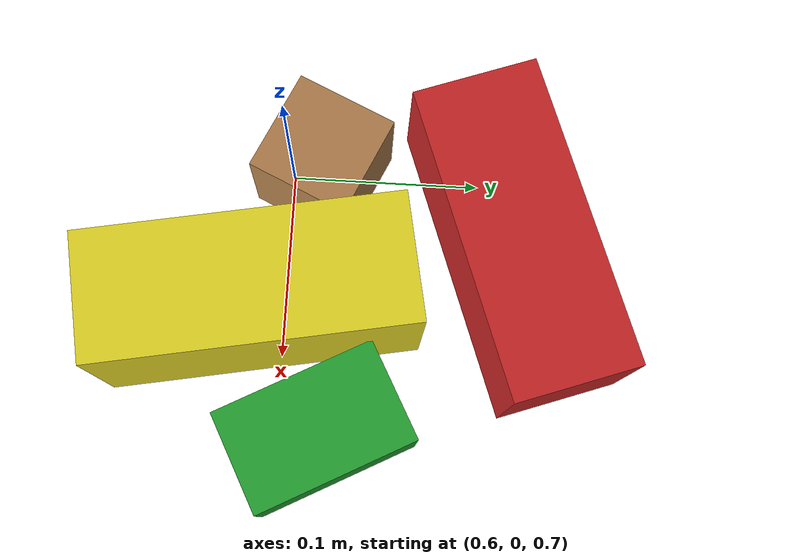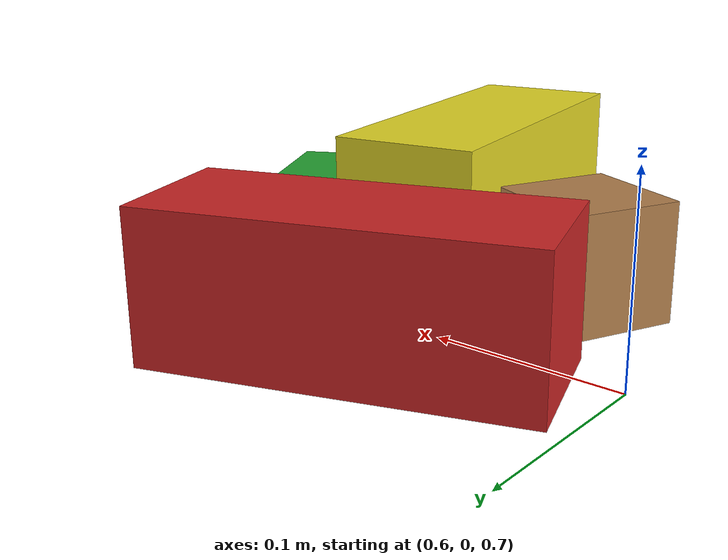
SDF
<sdf version="1.4">
 <world name="default">
  <light name="sun" type="directional">
   <pose>0 0 10 0 -0 0</pose>
   <diffuse>0.8 0.8 0.8 1</diffuse>
   <specular>0.2 0.2 0.2 1</specular>
   <attenuation>
    <range>1000</range>
    <constant>0.9</constant>
    <linear>0.01</linear>
    <quadratic>0.001</quadratic>
   </attenuation>
   <direction>-0.5 0.1 -0.9</direction>
  </light>
  <scene><shadows>0</shadows><ambient>0.4 0.4 0.4 1</ambient><background>0.7 0.7 0.7 1</background></scene>
  <model name="ground_plane">
   <static>1</static>
   <link name="link">
    <collision name="collision">
     <geometry><plane><normal>0 0 1</normal><size>100 100</size></plane></geometry>
     <surface><friction><ode><mu>100</mu><mu2>50</mu2></ode></friction></surface>
    </collision>
    <visual name="visual">
     <cast_shadows>0</cast_shadows>
     <geometry><plane><normal>0 0 1</normal><size>100 100</size></plane></geometry>
     <material>
      <script><uri>file://media/materials/scripts/gazebo.material</uri><name>Gazebo/Grey</name></script>
     </material>
    </visual>
    <velocity_decay><linear>0</linear><angular>0</angular></velocity_decay>
   </link>
  </model>
  <physics type="ode">
   <max_step_size>0.001</max_step_size>
   <real_time_factor>1</real_time_factor>
   <real_time_update_rate>1000</real_time_update_rate>
   <gravity>0 0 -9.8</gravity>
  </physics>
  <spherical_coordinates>
   <surface_model>EARTH_WGS84</surface_model>
   <latitude_deg>0</latitude_deg>
   <longitude_deg>0</longitude_deg>
   <elevation>0</elevation>
   <heading_deg>0</heading_deg>
  </spherical_coordinates>
  <model name="wood_cube_5cm">
   <link name="link">
    <pose>0 0 0.05 0 -0 0</pose>
    <inertial>
     <mass>0.01</mass>
     <inertia>
      <ixx>0.000101167</ixx>
      <ixy>0</ixy>
      <ixz>0</ixz>
      <iyy>6.1167e-05</iyy>
      <iyz>0</iyz>
      <izz>6.1167e-05</izz>
     </inertia>
    </inertial>
    <collision name="collision">
     <geometry><box><size>0.05 0.05 0.05</size></box></geometry>
     <surface><contact><ode><max_vel>0.1</max_vel><min_depth>0.001</min_depth></ode></contact></surface>
    </collision>
    <visual name="visual">
     <geometry><box><size>0.05 0.05 0.05</size></box></geometry>
     <material>
      <script><uri>file://media/materials/scripts/gazebo.material</uri><name>Gazebo/Wood</name></script>
     </material>
    </visual>
    <velocity_decay><linear>0</linear><angular>0</angular></velocity_decay>
   </link>
   <pose>0.613204 0.018652 0.714972 -0.001645 -0.003181 -0.430959</pose>
   <static>0</static>
  </model>
  <model name="rectangle_green">
   <link name="link">
    <pose>0 0 0.05 0 -0 0</pose>
    <inertial>
     <mass>0.01</mass>
     <inertia>
      <ixx>0.000101167</ixx>
      <ixy>0</ixy>
      <ixz>0</ixz>
      <iyy>6.1167e-05</iyy>
      <iyz>0</iyz>
      <izz>6.1167e-05</izz>
     </inertia>
    </inertial>
    <collision name="collision">
     <geometry><box><size>0.05 0.08 0.04</size></box></geometry>
     <surface><contact><ode><max_vel>0.1</max_vel><min_depth>0.001</min_depth></ode></contact></surface>
    </collision>
    <visual name="visual">
     <geometry><box><size>0.05 0.08 0.04</size></box></geometry>
     <material>
      <script><uri>file://media/materials/scripts/gazebo.material</uri><name>Gazebo/Green</name></script>
     </material>
    </visual>
    <velocity_decay><linear>0</linear><angular>0</angular></velocity_decay>
   </link>
   <pose>0.743552 0.023517 0.710023 9e-06 0.00141 0.48706</pose>
   <static>0</static>
  </model>
  <model name="wood_rectangle">
   <link name="link">
    <pose>0 0 0.05 0 -0 0</pose>
    <inertial>
     <mass>0.01</mass>
     <inertia>
      <ixx>0.000101167</ixx>
      <ixy>0</ixy>
      <ixz>0</ixz>
      <iyy>6.1167e-05</iyy>
      <iyz>0</iyz>
      <izz>6.1167e-05</izz>
     </inertia>
    </inertial>
    <collision name="collision">
     <geometry><box><size>0.06 0.15 0.06</size></box></geometry>
     <surface><contact><ode><max_vel>0.1</max_vel><min_depth>0.001</min_depth></ode></contact></surface>
    </collision>
    <visual name="visual">
     <geometry><box><size>0.06 0.15 0.06</size></box></geometry>
     <material>
      <script><uri>file://media/materials/scripts/gazebo.material</uri><name>Gazebo/Red</name></script>
     </material>
    </visual>
    <velocity_decay><linear>0</linear><angular>0</angular></velocity_decay>
   </link>
   <pose>0.650219 0.112986 0.719997 -7.4e-05 -3.8e-05 1.91318</pose>
   <static>0</static>
  </model>
  <model name="wood_cube_10cm">
   <link name="link">
    <pose>0 0 0.05 0 -0 0</pose>
    <inertial>
     <mass>0.01</mass>
     <inertia>
      <ixx>0.000101167</ixx>
      <ixy>0</ixy>
      <ixz>0</ixz>
      <iyy>6.1167e-05</iyy>
      <iyz>0</iyz>
      <izz>6.1167e-05</izz>
     </inertia>
    </inertial>
    <collision name="collision">
     <geometry><box><size>0.06 0.15 0.07</size></box></geometry>
     <surface><contact><ode><max_vel>0.1</max_vel><min_depth>0.001</min_depth></ode></contact></surface>
    </collision>
    <visual name="visual">
     <geometry><box><size>0.06 0.15 0.07</size></box></geometry>
     <material>
      <script><uri>file://media/materials/scripts/gazebo.material</uri><name>Gazebo/Yellow</name></script>
     </material>
    </visual>
    <velocity_decay><linear>0</linear><angular>0</angular></velocity_decay>
   </link>
   <pose>0.683443 -0.009062 0.725009 8e-06 0.000791 0.183833</pose>
   <static>0</static>
  </model>
 </world>
</sdf>
